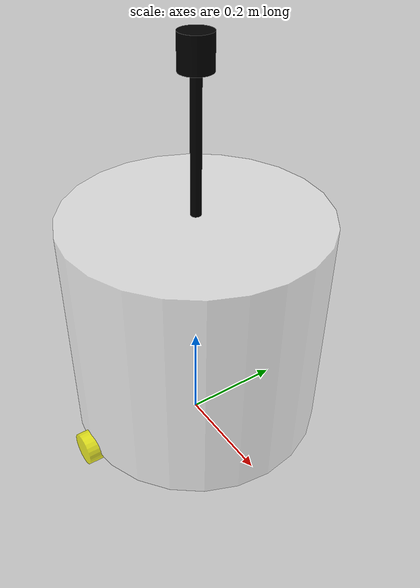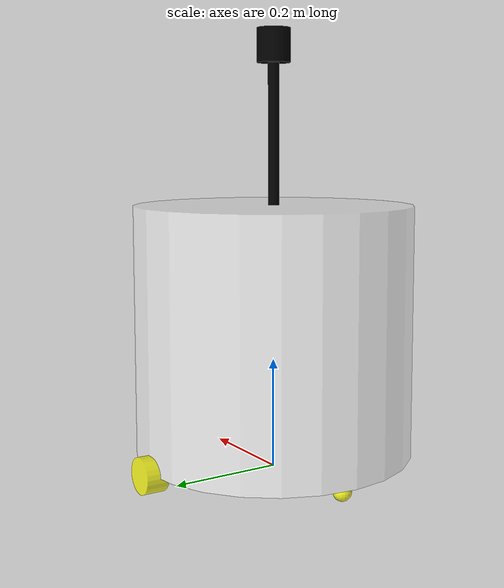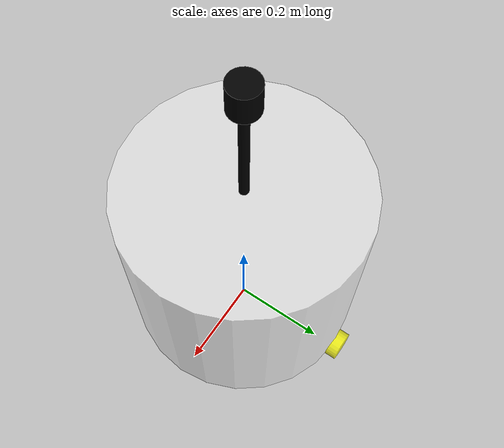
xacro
<?xml version="1.0"?>
<robot xmlns:xacro="http://www.ros.org/wiki/xacro" name="rm_sentry">

<xacro:include filename="$(find rm_description)/urdf/rm_sentry/base.urdf.xacro" />
<xacro:include filename="$(find rm_description)/urdf/rm_sentry/sensor/imu.urdf.xacro" />
<xacro:include filename="$(find rm_description)/urdf/rm_sentry/sensor/camera.urdf.xacro" />
<xacro:include filename="$(find rm_description)/urdf/rm_sentry/sensor/laser.urdf.xacro" />
<xacro:include filename="$(find rm_description)/urdf/rm_sentry/sensor/laser.urdf.xacro" />
<xacro:include filename="$(find rm_description)/urdf/rm_sentry/actuator/whell.urdf.xacro" />
<xacro:include filename="$(find rm_description)/urdf/rm_sentry/actuator/caster.urdf.xacro" />
<xacro:include filename="$(find rm_description)/urdf/rm_sentry/plugins/gazebo_control_plugin.xacro" />
<xacro:include filename="$(find rm_description)/urdf/rm_sentry/plugins/gazebo_sensor_plugin.xacro" />

<!-- 传感器部分 -->
<xacro:base_xacro radius = "0.25" length = "0.45" />
<xacro:imu_xacro xyz = "0.0 0.0 0.15" />
<xacro:laser_xacro xyz = "0.0 0.0 0.35" />

<!-- 执行器部分 -->
<xacro:whell_xacro whell_name = "left_whell" xyz = "0.0 0.25 -0.225" />
<xacro:whell_xacro whell_name = "right_whell" xyz = "0.0 -0.25 -0.225" />
<xacro:caster_xacro caster_name = "front_caster" xyz = "0.21 0.0 -0.241" />
<xacro:caster_xacro caster_name = "back_caster" xyz = "-0.21 0.0 -0.241" />

<xacro:gazebo_control_plugin />
<xacro:gazebo_sensor_plugin />

</robot>

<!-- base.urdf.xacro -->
<robot xmlns:xacro="http://www.ros.org/wiki/xacro" >
    <xacro:include filename="$(find rm_description)/urdf/rm_sentry/common_inertia.xacro" />
    <xacro:macro name="base_xacro" params="radius length">
        <link name = "base_footprint">
        </link>
        <link name="base_link">
            <!-- 部件外观 -->
            <visual>
                <!-- 沿着自己几何中心的偏移（xyz）和旋转（roll,pitch,yaw） ，用origin来定义-->
                <origin xyz="0.0 0.0 0.0" rpy="0.0 0.0 0.0"/>
                <!-- 几何形状 ，用geometry来定义-->
                <geometry>
                    <!-- cylinder（圆柱体），radius(半径)，length(高度) -->
                    <cylinder radius="${radius}" length="${length}"/>
                </geometry>
                <!-- 材质颜色描述 ，用material定义-->
                <material name="white">
                    <color rgba="1.0 1.0 1.0 0.5"/>
                </material>
            </visual>
            <collision>
                <!-- 沿着自己几何中心的偏移（xyz）和旋转（roll,pitch,yaw） ，用origin来定义-->
                <origin xyz="0.0 0.0 0.0" rpy="0.0 0.0 0.0"/>
                <!-- 几何形状 ，用geometry来定义-->
                <geometry>
                    <!-- cylinder（圆柱体），radius(半径)，length(高度) -->
                    <cylinder radius="${radius}" length="${length}"/>
                </geometry>
                <!-- 材质颜色描述 ，用material定义-->
                <material name="white">
                    <color rgba="1.0 1.0 1.0 0.5"/>
                </material>
            </collision>

            <xacro:cylinder_inertia m = "1.0" r = "${radius}" h = "${length}" />
        </link>

        <joint name="base_footprint_joint" type="fixed">
            <origin xyz="0.0 0.0 ${length/2.0 + 0.032 - 0.001}" rpy="0.0 0.0 0.0"/>
            <parent link="base_footprint"/>
            <child link="base_link"/>
        </joint>
    </xacro:macro>
</robot>

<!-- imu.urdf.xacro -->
<robot xmlns:xacro="http://www.ros.org/wiki/xacro" >
    <xacro:include filename="$(find rm_description)/urdf/rm_sentry/common_inertia.xacro" />
    <!-- 机器人的IMU部件，惯性测量传感器 -->
    <xacro:macro name="imu_xacro" params="xyz">
        <link name="imu_link">
            <!-- 部件外观 -->
            <visual>
                <!-- 沿着自己几何中心的偏移（xyz）和旋转（roll,pitch,yaw） ，用origin来定义-->
                <origin xyz="0.0 0.0 0.0" rpy="0.0 0.0 0.0"/>
                <!-- 几何形状 ，用geometry来定义-->
                <geometry>
                    <!-- cylinder（圆柱体），radius(半径)，length(高度) -->
                    <box size="0.02 0.02 0.02"/>
                </geometry>
                <!-- 材质颜色描述 ，用material定义-->
                <material name="white">
                    <color rgba="0.0 0.0 0.0 0.5"/>
                </material>
            </visual>

            <collision>
                <!-- 沿着自己几何中心的偏移（xyz）和旋转（roll,pitch,yaw） ，用origin来定义-->
                <origin xyz="0.0 0.0 0.0" rpy="0.0 0.0 0.0"/>
                <!-- 几何形状 ，用geometry来定义-->
                <geometry>
                    <!-- cylinder（圆柱体），radius(半径)，length(高度) -->
                    <box size="0.02 0.02 0.02"/>
                </geometry>
                <!-- 材质颜色描述 ，用material定义-->
                <material name="white">
                    <color rgba="0.0 0.0 0.0 0.5"/>
                </material>
            </collision>
            <xacro:box_inertia m = "0.02" w = "0.02" h = "0.02" d = "0.02"/>
        </link>
        <joint name="imu_joint" type="fixed">
            <origin xyz="${xyz}" rpy="0.0 0.0 0.0"/>
            <parent link="base_link"/>
            <child link="imu_link"/>
        </joint>
    </xacro:macro>
</robot>

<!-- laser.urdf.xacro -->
<robot xmlns:xacro="http://www.ros.org/wiki/xacro" >
    <xacro:include filename="$(find rm_description)/urdf/rm_sentry/common_inertia.xacro" />
    <!-- 雷达 -->
    <xacro:macro name="laser_xacro" params="xyz">
        <link name="laser_link">
            <!-- 部件外观 -->
            <visual>
                <!-- 沿着自己几何中心的偏移（xyz）和旋转（roll,pitch,yaw） ，用origin来定义-->
                <origin xyz="0.0 0.0 0.0" rpy="0.0 0.0 0.0"/>
                <!-- 几何形状 ，用geometry来定义-->
                <geometry>
                    <!-- cylinder（圆柱体），radius(半径)，length(高度) -->
                    <cylinder radius="0.03" length="0.06"/>
                </geometry>
                <!-- 材质颜色描述 ，用material定义-->
                <material name="black">
                    <color rgba="0.0 0.0 0.0 1.0"/>
                </material>
            </visual>
            <collision>
                <!-- 沿着自己几何中心的偏移（xyz）和旋转（roll,pitch,yaw） ，用origin来定义-->
                <origin xyz="0.0 0.0 0.0" rpy="0.0 0.0 0.0"/>
                <!-- 几何形状 ，用geometry来定义-->
                <geometry>
                    <!-- cylinder（圆柱体），radius(半径)，length(高度) -->
                    <cylinder radius="0.03" length="0.06"/>
                </geometry>
                <!-- 材质颜色描述 ，用material定义-->
                <material name="black">
                    <color rgba="0.0 0.0 0.0 1.0"/>
                </material>
            </collision>
            <xacro:cylinder_inertia m = "0.10" r = "0.03" h = "0.06" />
        </link>
        <!-- 雷达支撑杆 -->
        <link name="laser_cylinder_link">
            <visual>
                <origin xyz="0.0 0.0 0.0" rpy="0.0 0.0 0.0"/>
                <geometry>
                    <cylinder radius="0.01" length="0.25"/>
                </geometry>
                <material name="black">
                    <color rgba="0.0 0.0 0.0 1.0"/>
                </material>
            </visual>
            <collision>
                <origin xyz="0.0 0.0 0.0" rpy="0.0 0.0 0.0"/>
                <geometry>
                    <cylinder radius="0.01" length="0.25"/>
                </geometry>
                <material name="black">
                    <color rgba="0.0 0.0 0.0 1.0"/>
                </material>
            </collision>
            <xacro:cylinder_inertia m = "0.05" r = "0.01" h = "0.25" />

        </link>
        <!-- 雷达支撑 joint -->
        <joint name="laser_cylinder_link_joint" type="fixed">
            <origin xyz="${xyz}" rpy="0.0 0.0 0.0"/>

            <parent link="base_link"/>
            <child link="laser_cylinder_link"/>
        </joint>

        <!-- 雷达 joint -->
        <joint name="laser_joint" type="fixed">
            <origin xyz="0.0 0.0 0.155 " rpy="0.0 0.0 0.0"/>
            <parent link="laser_cylinder_link"/>
            <child link="laser_link"/>
        </joint>
        <gazebo reference = "laser_cylinder_link">
            <material>Gazebo/Black</material>
        </gazebo>
        <gazebo reference = "laser_link">
            <material>Gazebo/Black</material>
        </gazebo>
    </xacro:macro>
</robot>

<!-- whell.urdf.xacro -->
<robot xmlns:xacro="http://www.ros.org/wiki/xacro" >
    <xacro:include filename="$(find rm_description)/urdf/rm_sentry/common_inertia.xacro" />
    <!-- 机器人的IMU部件，惯性测量传感器 -->
    <xacro:macro name="whell_xacro" params="whell_name xyz">
        <link name="${whell_name}_link">
            <!-- 部件外观 -->
            <visual>
                <!-- 沿着自己几何中心的偏移（xyz）和旋转（roll,pitch,yaw） ，用origin来定义-->
                <origin xyz="0.0 0.0 0.0" rpy="1.57079 0.0 0.0"/>
                <!-- 几何形状 ，用geometry来定义-->
                <geometry>
                    <!-- cylinder（圆柱体），radius(半径)，length(高度) -->
                    <cylinder radius="0.032" length="0.04"/>
                </geometry>
                <!-- 材质颜色描述 ，用material定义-->
                <material name="yellow">
                    <color rgba="1.0 1.0 0.0 0.8"/>
                </material>
            </visual>
            <collision>
                <!-- 沿着自己几何中心的偏移（xyz）和旋转（roll,pitch,yaw） ，用origin来定义-->
                <origin xyz="0.0 0.0 0.0" rpy="1.57079 0.0 0.0"/>
                <!-- 几何形状 ，用geometry来定义-->
                <geometry>
                    <!-- cylinder（圆柱体），radius(半径)，length(高度) -->
                    <cylinder radius="0.032" length="0.04"/>
                </geometry>
                <!-- 材质颜色描述 ，用material定义-->
                <material name="yellow">
                    <color rgba="1.0 1.0 0.0 0.8"/>
                </material>
            </collision>
            <xacro:cylinder_inertia m = "0.05" r = "0.032" h = "0.04" />
        </link>
        <joint name="${whell_name}_joint" type="continuous">
            <origin xyz="${xyz}" rpy = "0.0 0.0 0.0"/>
            <parent link="base_link"/>
            <child link="${whell_name}_link"/>
            <axis xyz="0 1 0"/>

        </joint>
        <gazebo reference = "${whell_name}_link">
            <mu1 value="20.0"/>
            <mu2 value="20.0"/>
            <kp value="1000000000.0"/>
            <kd value="1.0"/>
            <material>Gazebo/Black</material>
        </gazebo>
    </xacro:macro>
</robot>

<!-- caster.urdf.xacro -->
<robot xmlns:xacro="http://www.ros.org/wiki/xacro" >
    <xacro:include filename="$(find rm_description)/urdf/rm_sentry/common_inertia.xacro" />
    <!-- 机器人的IMU部件，惯性测量传感器 -->
    <xacro:macro name="caster_xacro" params="caster_name xyz">
        <link name="${caster_name}_link">
            <!-- 部件外观 -->
            <visual>
                <!-- 沿着自己几何中心的偏移（xyz）和旋转（roll,pitch,yaw） ，用origin来定义-->
                <origin xyz="0.0 0.0 0.0" rpy="1.57079 0.0 0.0"/>
                <!-- 几何形状 ，用geometry来定义-->
                <geometry>
                    <!-- cylinder（圆柱体），radius(半径)，length(高度) -->
                    <sphere radius="0.016"/>
                </geometry>
                <!-- 材质颜色描述 ，用material定义-->
                <material name="yellow">
                    <color rgba="1.0 1.0 0.0 0.8"/>
                </material>
            </visual>
            <collision>
                <!-- 沿着自己几何中心的偏移（xyz）和旋转（roll,pitch,yaw） ，用origin来定义-->
                <origin xyz="0.0 0.0 0.0" rpy="1.57079 0.0 0.0"/>
                <!-- 几何形状 ，用geometry来定义-->
                <geometry>
                    <!-- cylinder（圆柱体），radius(半径)，length(高度) -->
                    <sphere radius="0.016"/>
                </geometry>
                <!-- 材质颜色描述 ，用material定义-->
                <material name="yellow">
                    <color rgba="1.0 1.0 0.0 0.8"/>
                </material>
            </collision>
            <xacro:sphere_inertia m = "0.05" r = "0.016" />

        </link>
        <joint name="${caster_name}_joint" type="fixed">
            <origin xyz="${xyz}" rpy = "0.0 0.0 0.0"/>
            <parent link="base_link"/>
            <child link="${caster_name}_link"/>
        </joint>
        <gazebo reference = "${caster_name}_link">
            <mu1 value="0.0"/>
            <mu2 value="0.0"/>
            <kp value="1000000000.0"/>
            <kd value="1.0"/>
            <material>Gazebo/Black</material>
        </gazebo>
    </xacro:macro>
</robot>
